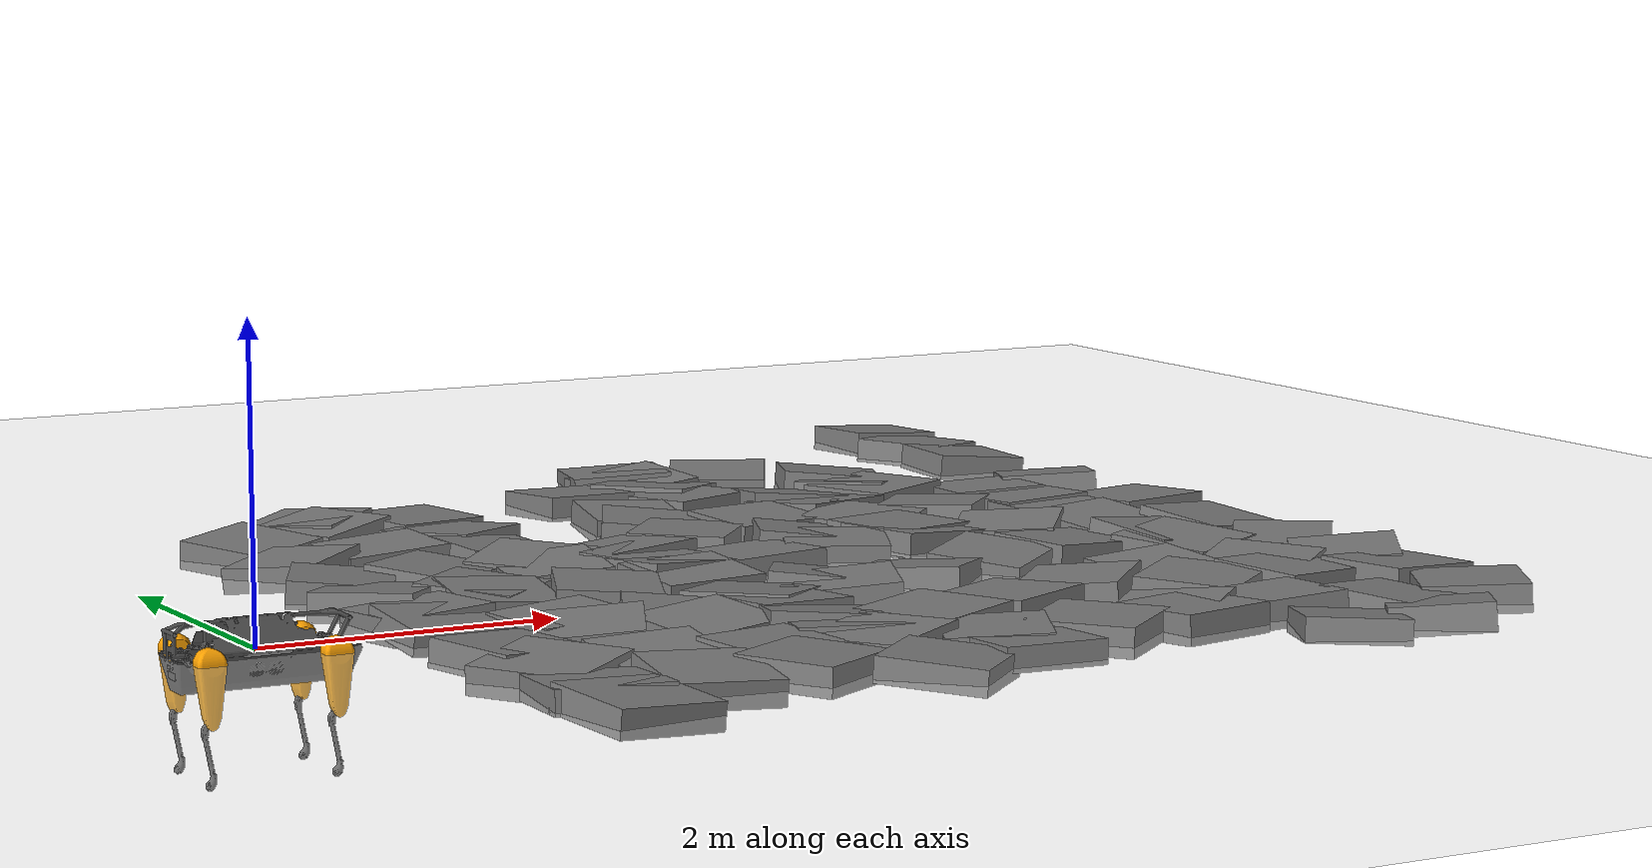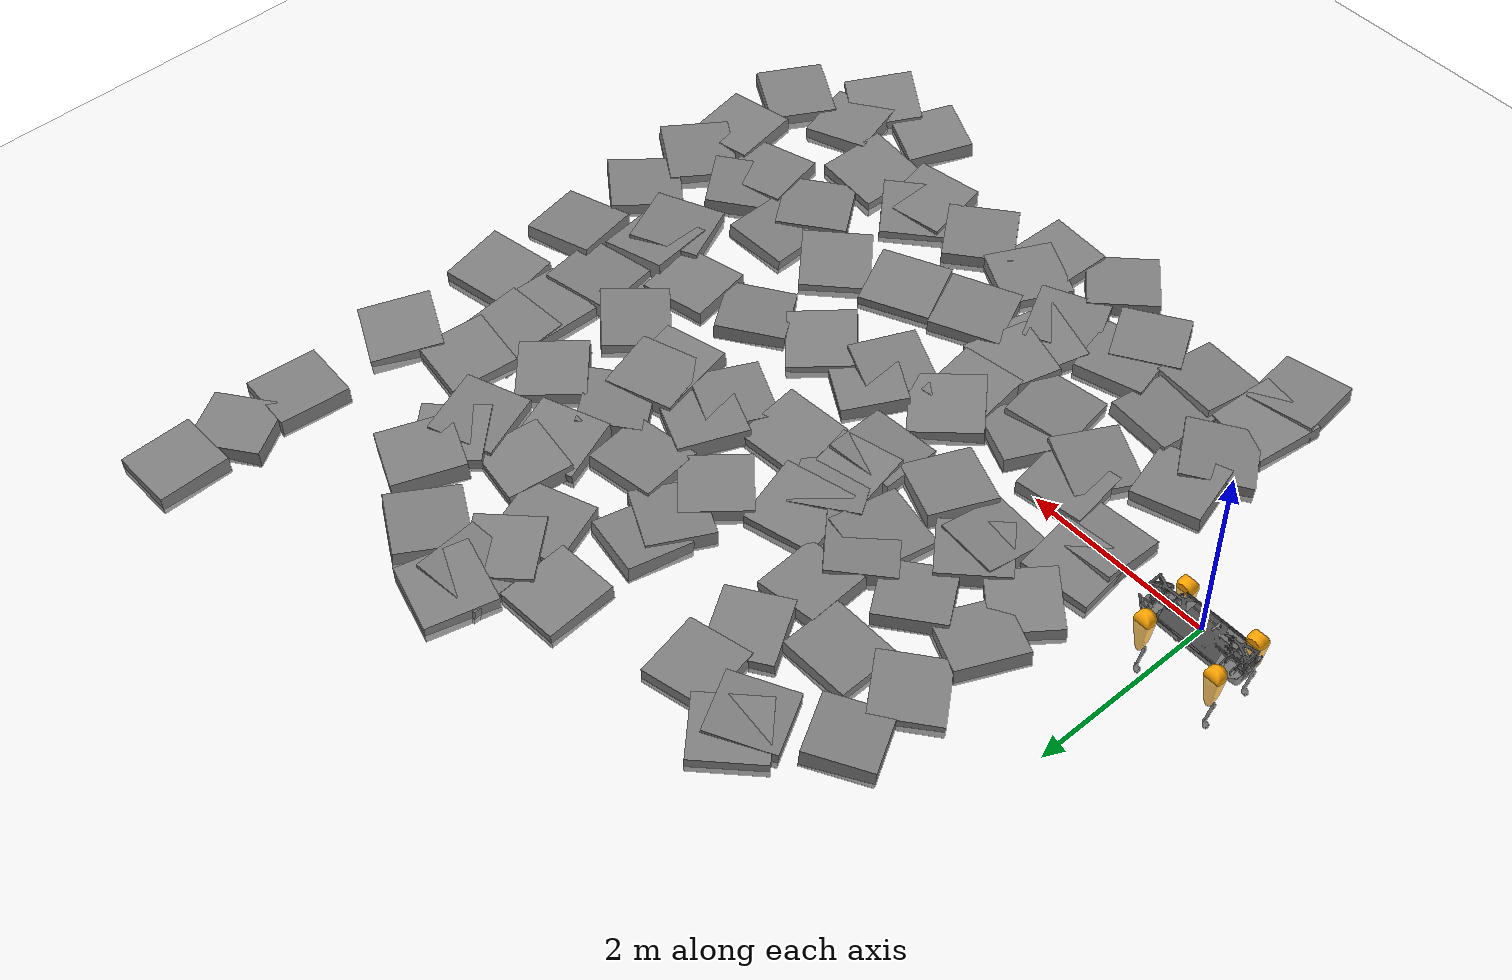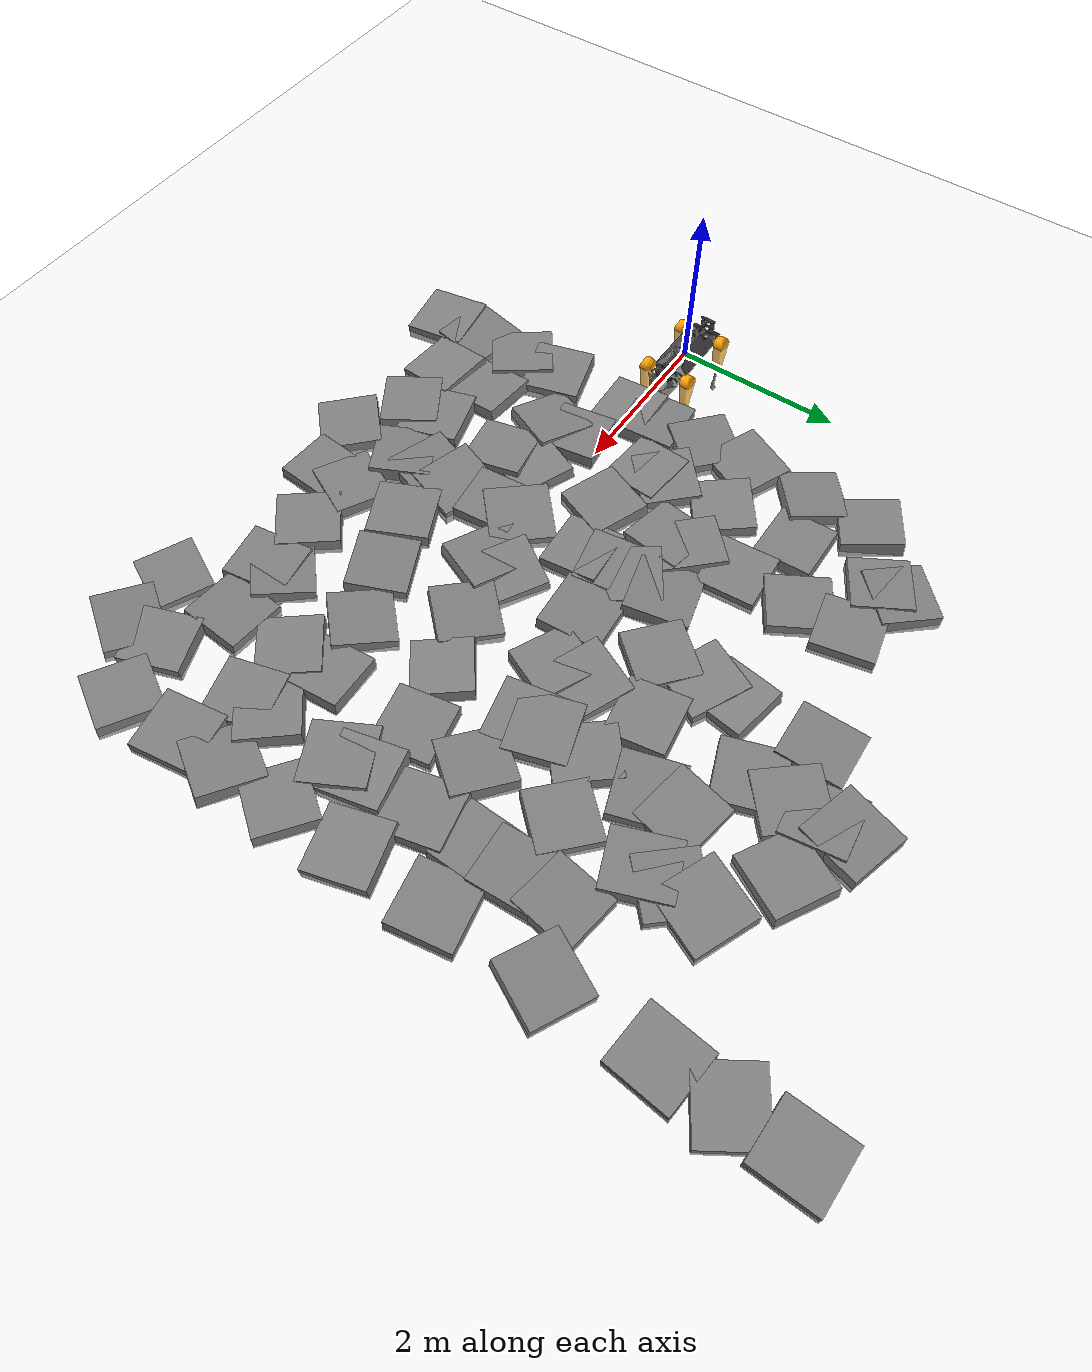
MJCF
<mujoco model="hyqreal2_random_boxes">
      <include file="hyqreal2.xml"/>

      <statistic center="0 0 0.1" extent="0.8"/>

      <visual>
            <headlight diffuse="0.4 0.4 0.4" ambient="0.25 0.25 0.25" specular="0.25 0.25 0.25"/>
            <rgba haze="0.99 0.99 0.99 1"/>
            <global azimuth="-130" elevation="-20"/>
      </visual>
      <asset>
            <texture
                  type="skybox"
                  builtin="gradient"
                  rgb1="0.99 0.99 0.99"
                  rgb2="0.99 0.99 0.99"
                  width="512"
                  height="3072"
            />
            <texture
                  type="2d"
                  name="groundplane"
                  builtin="checker"
                  mark="edge"
                  rgb1="0.93 0.93 0.93"
                  rgb2="0.93 0.93 0.93"
                  markrgb="0 0 0"
                  width="250"
                  height="250"
            />
            <material name="groundplane" texture="groundplane" texuniform="true" texrepeat="5 5" reflectance="0.0"/>
      </asset>

      <worldbody>
            <light pos="0 0 5.0" dir="0 0 -1" directional="true" castshadow="false"/>

            <geom name="floor" size="0 0 0.05" type="plane" material="groundplane"/>

            <geom size="0.354678 0.358708 0.0896548" pos="1.2 -2.71166 0.02" quat="0.0652341 -0.0319302 0.0254488 -0.997034" type="box"/>
            <geom size="0.356488 0.365869 0.0788364" pos="1.2 -2.21978 0.02" quat="0.759952 -0.0193772 0.0245563 0.649226" type="box"/>
            <geom size="0.364622 0.35751 0.0906182" pos="1.2 -1.58577 0.02" quat="0.458906 -0.00516719 -0.0375923 0.887674" type="box"/>
            <geom size="0.354122 0.35046 0.0929774" pos="1.2 -1.06653 0.02" quat="0.990294 0.00586796 0.0316036 0.135219" type="box"/>
            <geom size="0.335666 0.343025 0.0812434" pos="1.2 -0.047247 0.02" quat="0.699206 0.0552936 -0.00835086 0.71273" type="box"/>
            <geom size="0.339463 0.36249 0.0864424" pos="1.2 0.317769 0.02" quat="0.745624 0.00539253 -0.0321707 -0.665567" type="box"/>
            <geom size="0.346239 0.335771 0.0967117" pos="1.2 0.974073 0.02" quat="0.938524 -0.0367319 0.00108768 -0.343253" type="box"/>
            <geom size="0.361414 0.341298 0.0918175" pos="1.2 1.53126 0.02" quat="0.843035 0.0321216 0.024535 0.536338" type="box"/>
            <geom size="0.335286 0.343191 0.0859845" pos="1.2 2.36775 0.02" quat="0.902709 0.00500436 -0.053257 -0.426913" type="box"/>
            <geom size="0.344622 0.334008 0.0979981" pos="1.2 3.08121 0.02" quat="0.867245 0.041568 0.0197942 -0.495747" type="box"/>
            <geom size="0.353424 0.341678 0.0853316" pos="1.9 -2.23449 0.02" quat="0.0506356 0.0172853 -0.0483532 0.997396" type="box"/>
            <geom size="0.34913 0.342748 0.0801555" pos="1.9 -1.59372 0.02" quat="0.998266 0.0473363 -0.017491 -0.0302989" type="box"/>
            <geom size="0.34364 0.350693 0.0913967" pos="1.9 -0.675116 0.02" quat="0.974087 0.0249417 -0.0498964 -0.219185" type="box"/>
            <geom size="0.353011 0.333798 0.0864206" pos="1.9 -0.315923 0.02" quat="0.996769 0.00784916 -0.019476 0.0775293" type="box"/>
            <geom size="0.334267 0.344324 0.0811139" pos="1.9 0.636574 0.02" quat="0.663122 0.00759046 0.0495771 -0.746829" type="box"/>
            <geom size="0.336241 0.358561 0.0890266" pos="1.9 0.885202 0.02" quat="0.40212 0.0362004 -0.00519903 0.914856" type="box"/>
            <geom size="0.341201 0.351484 0.0837107" pos="1.9 1.61867 0.02" quat="0.891391 0.00850887 0.0430055 -0.45111" type="box"/>
            <geom size="0.33302 0.366726 0.091285" pos="1.9 2.52752 0.02" quat="0.716961 0.025214 -0.0159079 -0.696475" type="box"/>
            <geom size="0.337699 0.347496 0.0939288" pos="1.9 3.54656 0.02" quat="0.50233 -0.0146459 -0.0372062 0.863751" type="box"/>
            <geom size="0.335654 0.360502 0.0911121" pos="1.9 3.78412 0.02" quat="0.920172 -0.00357184 -0.0312743 -0.390248" type="box"/>
            <geom size="0.333574 0.348359 0.0950439" pos="2.6 -2.20095 0.02" quat="0.492231 0.0128201 -0.000669289 0.87037" type="box"/>
            <geom size="0.359895 0.362198 0.0919442" pos="2.6 -1.82491 0.02" quat="0.990756 0.0263184 0.0151926 0.13221" type="box"/>
            <geom size="0.348548 0.350459 0.089338" pos="2.6 -0.882231 0.02" quat="0.994556 0.0372519 -0.0291963 0.0928359" type="box"/>
            <geom size="0.348484 0.347091 0.0813035" pos="2.6 -0.476281 0.02" quat="0.213481 0.0361536 -0.0243802 0.975973" type="box"/>
            <geom size="0.352582 0.342784 0.093094" pos="2.6 0.508585 0.02" quat="0.831823 0.0335048 0.00443074 0.554011" type="box"/>
            <geom size="0.34627 0.362757 0.0871507" pos="2.6 1.35291 0.02" quat="0.0845878 -0.0348768 -0.0213519 0.995577" type="box"/>
            <geom size="0.339962 0.36385 0.0998801" pos="2.6 1.60211 0.02" quat="0.370094 0.0271889 0.0305026 -0.928095" type="box"/>
            <geom size="0.338962 0.334916 0.0843823" pos="2.6 2.20558 0.02" quat="0.682859 0.031337 0.0272987 0.729367" type="box"/>
            <geom size="0.333355 0.362489 0.0847502" pos="2.6 2.94372 0.02" quat="0.275021 -0.00811829 -0.0240645 -0.961103" type="box"/>
            <geom size="0.352068 0.336788 0.0870109" pos="2.6 3.54017 0.02" quat="0.77751 -0.00483518 0.00535218 -0.628829" type="box"/>
            <geom size="0.360265 0.34693 0.082794" pos="3.3 -2.57122 0.02" quat="0.929187 0.029074 0.0189687 0.367977" type="box"/>
            <geom size="0.354015 0.345381 0.0963107" pos="3.3 -1.77017 0.02" quat="0.237504 0.0342253 -0.00473834 -0.970772" type="box"/>
            <geom size="0.365348 0.357255 0.0845119" pos="3.3 -1.37691 0.02" quat="0.986766 -0.0379353 0.00187736 -0.157638" type="box"/>
            <geom size="0.334136 0.365843 0.0975329" pos="3.3 -1.03014 0.02" quat="0.812501 -0.000369101 0.0567499 0.580191" type="box"/>
            <geom size="0.336489 0.345521 0.0955185" pos="3.3 -0.492389 0.02" quat="0.998053 -0.0186523 0.0127422 0.0581372" type="box"/>
            <geom size="0.363931 0.365425 0.0871527" pos="3.3 -0.162213 0.02" quat="0.93154 -0.0240255 0.0332841 0.361315" type="box"/>
            <geom size="0.335544 0.359939 0.0854125" pos="3.3 0.683015 0.02" quat="0.731599 0.0319146 0.0219907 -0.680632" type="box"/>
            <geom size="0.334482 0.342912 0.0938826" pos="3.3 1.0608 0.02" quat="0.994675 -0.0337491 0.0272725 0.093481" type="box"/>
            <geom size="0.335392 0.349373 0.0903187" pos="3.3 1.30254 0.02" quat="0.473372 0.0352887 0.00328001 0.88015" type="box"/>
            <geom size="0.366218 0.366639 0.0907957" pos="3.3 1.71047 0.02" quat="0.990801 -0.0411533 -0.0209012 0.127209" type="box"/>
            <geom size="0.337514 0.356996 0.0800177" pos="4 -2.35049 0.02" quat="0.99926 -0.0242953 0.0017573 -0.0297516" type="box"/>
            <geom size="0.35355 0.335905 0.0850661" pos="4 -1.96591 0.02" quat="0.528026 0.0159756 -0.0160628 -0.848926" type="box"/>
            <geom size="0.354043 0.363543 0.0900548" pos="4 -1.23044 0.02" quat="0.843119 0.010908 -0.00635495 -0.537578" type="box"/>
            <geom size="0.344493 0.337035 0.0932492" pos="4 -0.127273 0.02" quat="0.549308 0.0333683 -0.0301667 -0.834409" type="box"/>
            <geom size="0.332842 0.340403 0.0816387" pos="4 0.189606 0.02" quat="0.872441 0.0155629 0.0556251 0.485294" type="box"/>
            <geom size="0.359487 0.358148 0.0806559" pos="4 1.14433 0.02" quat="0.67717 -0.0297407 0.00803749 0.735182" type="box"/>
            <geom size="0.342038 0.352328 0.0891775" pos="4 2.10071 0.02" quat="0.346148 0.00751983 0.00326024 0.938144" type="box"/>
            <geom size="0.333806 0.356259 0.0891892" pos="4 2.62228 0.02" quat="0.524652 -0.0112595 0.0400123 -0.850301" type="box"/>
            <geom size="0.334875 0.333807 0.0909809" pos="4 2.97396 0.02" quat="0.090362 0.0200632 -0.0358422 0.995062" type="box"/>
            <geom size="0.333687 0.366864 0.0866356" pos="4 3.94708 0.02" quat="0.020248 -0.00811981 -0.0327082 -0.999227" type="box"/>
            <geom size="0.355994 0.357222 0.0974128" pos="4.7 -2.01145 0.02" quat="0.943493 0.00397657 -0.00466918 0.331334" type="box"/>
            <geom size="0.363729 0.343319 0.0817165" pos="4.7 -0.9726 0.02" quat="0.216405 0.0080518 -0.0239138 -0.975977" type="box"/>
            <geom size="0.351307 0.341265 0.0800383" pos="4.7 0.137803 0.02" quat="0.926282 -0.0499612 -0.0150184 -0.373202" type="box"/>
            <geom size="0.352663 0.34269 0.0930078" pos="4.7 1.26632 0.02" quat="0.976574 0.0135466 -0.00261269 -0.214737" type="box"/>
            <geom size="0.353988 0.36687 0.0943904" pos="4.7 1.63937 0.02" quat="0.541575 -0.0444384 0.0297327 -0.83895" type="box"/>
            <geom size="0.336508 0.360426 0.0929448" pos="4.7 2.37891 0.02" quat="0.653129 0.0163423 -0.0138705 0.756943" type="box"/>
            <geom size="0.359172 0.361896 0.0810459" pos="4.7 3.54596 0.02" quat="0.57204 -0.0113243 0.00919481 0.820096" type="box"/>
            <geom size="0.360775 0.342092 0.0848551" pos="4.7 3.98983 0.02" quat="0.910203 -0.0353399 0.013891 -0.412417" type="box"/>
            <geom size="0.34632 0.366458 0.0847792" pos="4.7 4.3363 0.02" quat="0.747172 0.0505765 -0.00886806 -0.662644" type="box"/>
            <geom size="0.360122 0.364323 0.097085" pos="4.7 4.62611 0.02" quat="0.606931 -0.00244147 -0.028534 -0.794239" type="box"/>
            <geom size="0.339307 0.354053 0.0991393" pos="5.4 -1.99562 0.02" quat="0.0861855 0.00790942 -0.0184931 -0.996076" type="box"/>
            <geom size="0.342828 0.338917 0.0791816" pos="5.4 -1.78216 0.02" quat="0.913638 0.00354878 -0.0520292 -0.40317" type="box"/>
            <geom size="0.350327 0.349284 0.0793987" pos="5.4 -0.696238 0.02" quat="0.925502 -0.0389156 -0.0339425 0.375207" type="box"/>
            <geom size="0.346925 0.33384 0.0805184" pos="5.4 0.365056 0.02" quat="0.313966 0.0162675 0.0493532 -0.948011" type="box"/>
            <geom size="0.364396 0.346531 0.0850257" pos="5.4 1.40655 0.02" quat="0.634414 0.0127202 0.0339293 0.772143" type="box"/>
            <geom size="0.362053 0.340205 0.0964936" pos="5.4 1.61171 0.02" quat="0.988713 0.00190482 0.0114558 0.149368" type="box"/>
            <geom size="0.333366 0.356651 0.0825036" pos="5.4 2.10753 0.02" quat="0.94012 0.0255222 -0.0136144 0.339614" type="box"/>
            <geom size="0.343799 0.366345 0.0830142" pos="5.4 2.81237 0.02" quat="0.814463 -0.035342 -0.0234585 -0.578663" type="box"/>
            <geom size="0.358491 0.332685 0.0807223" pos="5.4 3.21079 0.02" quat="0.99434 -0.0406809 0.0422377 -0.0885895" type="box"/>
            <geom size="0.365167 0.355411 0.0960704" pos="5.4 4.3156 0.02" quat="0.507703 0.0253923 0.0136717 -0.86105" type="box"/>
            <geom size="0.332648 0.335073 0.0816439" pos="6.1 -2.70408 0.02" quat="0.227359 0.0292626 0.0385252 0.972608" type="box"/>
            <geom size="0.346563 0.358086 0.0929296" pos="6.1 -1.87002 0.02" quat="0.998955 -0.0256111 -0.0265803 -0.0269456" type="box"/>
            <geom size="0.358907 0.347799 0.0875046" pos="6.1 -1.07574 0.02" quat="0.945481 0.0252224 -0.0048367 0.324662" type="box"/>
            <geom size="0.342332 0.358486 0.0852868" pos="6.1 -0.579977 0.02" quat="0.998891 0.0264887 -0.0266282 0.0283753" type="box"/>
            <geom size="0.339346 0.351711 0.0833436" pos="6.1 0.544706 0.02" quat="0.64033 0.0190141 0.0204006 0.767594" type="box"/>
            <geom size="0.357607 0.337918 0.0945795" pos="6.1 1.2923 0.02" quat="0.327698 -0.0414204 -0.018753 0.943688" type="box"/>
            <geom size="0.3403 0.339945 0.0924872" pos="6.1 2.30616 0.02" quat="0.405146 -0.0125868 -0.0201492 -0.913943" type="box"/>
            <geom size="0.341783 0.36692 0.0978317" pos="6.1 3.18711 0.02" quat="0.982501 -0.00200289 -0.0171298 0.185456" type="box"/>
            <geom size="0.339121 0.334077 0.0790374" pos="6.1 3.50458 0.02" quat="0.368136 -0.0305345 -0.0294672 -0.928803" type="box"/>
            <geom size="0.365643 0.366709 0.0985355" pos="6.1 3.85607 0.02" quat="0.204082 0.04858 0.0200244 0.977543" type="box"/>
            <geom size="0.355135 0.333523 0.0952333" pos="6.8 -2.6874 0.02" quat="0.4683 -0.0250365 -0.0572662 -0.881356" type="box"/>
            <geom size="0.333364 0.361002 0.0841948" pos="6.8 -2.22898 0.02" quat="0.161992 -0.0377871 0.0191606 -0.985882" type="box"/>
            <geom size="0.345343 0.344725 0.0860352" pos="6.8 -1.06201 0.02" quat="0.12633 -0.0208251 0.0171577 -0.991621" type="box"/>
            <geom size="0.363884 0.345565 0.0929311" pos="6.8 -0.750571 0.02" quat="0.337723 0.0228113 0.0281954 -0.940547" type="box"/>
            <geom size="0.360906 0.359784 0.0981111" pos="6.8 0.163579 0.02" quat="0.52928 0.0239292 -0.0358347 0.847352" type="box"/>
            <geom size="0.340803 0.3607 0.0988377" pos="6.8 0.440137 0.02" quat="0.992844 0.0431845 0.0542106 0.097251" type="box"/>
            <geom size="0.36404 0.360975 0.0866045" pos="6.8 1.18428 0.02" quat="0.993573 0.0484608 -0.00649486 0.102088" type="box"/>
            <geom size="0.34801 0.3334 0.0868067" pos="6.8 1.82124 0.02" quat="0.99985 -0.00808118 -0.00936224 -0.0121525" type="box"/>
            <geom size="0.341958 0.366414 0.0916521" pos="6.8 2.27429 0.02" quat="0.0336503 0.0156748 -0.019894 -0.999113" type="box"/>
            <geom size="0.34048 0.353592 0.0839161" pos="6.8 2.78706 0.02" quat="0.0676876 -0.0148025 0.024145 0.997305" type="box"/>
            <geom size="0.345322 0.353147 0.0953584" pos="7.5 -2.08615 0.02" quat="0.864319 -0.0154579 -0.00875528 0.50263" type="box"/>
            <geom size="0.348504 0.355258 0.0897459" pos="7.5 -1.30978 0.02" quat="0.996714 -0.00852771 0.0211766 0.0777161" type="box"/>
            <geom size="0.360977 0.352154 0.0919536" pos="7.5 -0.734571 0.02" quat="0.274492 -0.0480006 -0.0152596 0.960269" type="box"/>
            <geom size="0.339904 0.361235 0.0812563" pos="7.5 -0.0101444 0.02" quat="0.95015 0.0254238 -0.0100935 -0.310591" type="box"/>
            <geom size="0.363075 0.355135 0.0859519" pos="7.5 0.854535 0.02" quat="0.125317 -0.0421702 0.0438916 -0.990248" type="box"/>
            <geom size="0.352644 0.364296 0.094377" pos="7.5 1.85761 0.02" quat="0.640287 -0.0170853 0.0118916 0.767853" type="box"/>
            <geom size="0.358622 0.346047 0.0915758" pos="7.5 3.04778 0.02" quat="0.846414 -0.0481847 0.0274869 0.529628" type="box"/>
            <geom size="0.362359 0.344544 0.0931228" pos="7.5 4.24261 0.02" quat="0.740763 0.0281308 0.0334315 0.670345" type="box"/>
            <geom size="0.365172 0.333489 0.0885586" pos="7.5 4.92962 0.02" quat="0.282147 -0.0375309 0.00560447 -0.958621" type="box"/>
            <geom size="0.34329 0.364698 0.0939696" pos="7.5 5.60445 0.02" quat="0.99929 -0.0220652 0.0294936 -0.00789042" type="box"/>
      </worldbody>
</mujoco>

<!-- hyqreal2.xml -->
<mujoco model="hyqreal2_description">
  <compiler angle="radian"/>

  <default>
      <joint damping="0.6" armature="0.01" frictionloss="0.2"/>

      <default class="visual">
          <geom type="mesh" contype="0" conaffinity="0" group="2"/>
      </default>

      <default class="collision">
          <geom group="3" rgba="0.2 0.2 0.2 0.5"/>
      </default>

  </default>

  <asset>
    <mesh name="torso" file="assets/torso.stl" scale="0.001 0.001 0.001"/>
    <mesh name="upper_leg_visual" file="assets/upper_leg_visual.stl" scale="0.001 0.001 0.001"/>
    <mesh name="lower_leg_visual" file="assets/lower_leg_visual.stl" scale="0.001 0.001 0.001"/>
    <mesh name="upper_leg_visual_mirrored" file="assets/upper_leg_visual_mirrored.stl" scale="0.001 0.001 0.001"/>
  </asset>

  <worldbody>
    <body name="base">
      <inertial pos="0.0015 0.0019 -0.0014" quat="-0.0153338 0.706671 -0.0152992 0.70721" mass="83.07" diaginertia="9.46 9.36 2.42"/>
      <joint name="floating_base" type="free" limited="false" actuatorfrclimited="false"/>

      <!-- base visual and collision -->
      <geom class="visual" type="mesh" mesh="torso" pos="0 0 0" quat="0 0 0 1" rgba="0.3 0.3 0.3 1"/>
      <geom class="collision" type="box" size="0.58 0.12 0.21"/>

      <!-- pos="0.4042 0.1505 0" -->
      <body name="FL_hip" pos="0.4042 0.1005 0" quat="0 0.707107 0 -0.707107">
        <inertial pos="-0.0291805 -0.0025707 0.0009034" quat="0.633323 0.721694 0.0652678 0.271663" mass="5.07" diaginertia="0.00531613 0.00492843 0.0047808"/>
        <joint name="FL_hip_joint" pos="0 0 0" axis="0 0 1" range="-0.733038 0.401426" actuatorfrcrange="-150 150"/>

        <!-- FL hip collision -->
        <geom class="collision" type="capsule" size="0.066 0.0409" pos="0 -0.17 0"/>

        <body name="FL_thigh" pos="0 -0.1636 0" quat="0.707107 0.707107 0 0">
          <inertial pos="0.0659 0.0099 -0.0426" quat="0.332192 0.679861 0.348926 0.55289" mass="4.627" diaginertia="0.0841688 0.0797647 0.0139666"/>
          <joint name="FL_thigh_joint" pos="0 0 0" axis="0 0 1" range="0.261799 2.18166" actuatorfrcrange="-250 250"/>

          <!-- FL thigh visual and collision -->
          <geom class="visual" type="mesh" mesh="upper_leg_visual" rgba="1 0.64 0 1"/>
          <geom class="collision" type="box" size="0.165 0.05 0.05" pos="0.23 0 0."/>

          <body name="FL_calf" pos="0.363 0 0">
            <inertial pos="0.273618 -0.00998183 2.57963e-05" quat="0.00662124 0.707 -0.00655672 0.707152" mass="1.2089" diaginertia="0.0483041 0.047405 0.00115536"/>
            <joint name="FL_calf_joint" pos="0 0 0" axis="0 0 1" range="-2.77001 -0.669857" actuatorfrcrange="-350 350"/>

            <!-- FL calf visual and collision -->
            <geom class="visual" type="mesh" mesh="lower_leg_visual" rgba="0.3 0.3 0.3 1"/>
            <geom class="collision" type="box" size="0.15 0.015 0.02" pos="0.2 0.01 0." quat="0.9962 0 0 -0.0872" />

            <!-- FL foot collision -->
            <geom class="collision" type="sphere" name="FL" size="0.032" pos="0.38 0 0" quat="0.5 0.5 -0.5 -0.5"/>
          </body>
        </body>
      </body>

      <body name="FR_hip" pos="0.4042 -0.1005 0" quat="0.707107 0 0.707107 0">
        <inertial pos="-0.0291805 -0.0025707 0.0009034" quat="0.633323 0.721694 0.0652678 0.271663" mass="5.07" diaginertia="0.00531613 0.00492843 0.0047808"/>
        <joint name="FR_hip_joint" pos="0 0 0" axis="0 0 1" range="-0.733038 0.401426" actuatorfrcrange="-150 150"/>

        <!-- FR hip collision -->
        <geom class="collision" type="capsule" size="0.066 0.0409" pos="0 -0.17 0"/>

        <body name="FR_thigh" pos="0 -0.1636 0" quat="0.707107 -0.707107 0 0">
          <inertial pos="0.0659 0.0099 0.0426" quat="0.679861 0.332192 0.55289 0.348926" mass="4.627" diaginertia="0.0841688 0.0797647 0.0139666"/>
          <joint name="FR_thigh_joint" pos="0 0 0" axis="0 0 1" range="0.261799 2.18166" actuatorfrcrange="-250 250"/>

          <!-- FR thigh visual and collision -->
          <geom class="visual" type="mesh" mesh="upper_leg_visual_mirrored" rgba="1 0.64 0 1"/>
          <geom class="collision" type="box" size="0.165 0.05 0.05" pos="0.23 0 0."/>

          <body name="FR_calf" pos="0.363 0 0">
            <inertial pos="0.273618 -0.00998183 2.57963e-05" quat="0.00662124 0.707 -0.00655672 0.707152" mass="1.2089" diaginertia="0.0483041 0.047405 0.00115536"/>
            <joint name="FR_calf_joint" pos="0 0 0" axis="0 0 1" range="-2.77001 -0.669857" actuatorfrcrange="-350 350"/>

            <!-- FR calf visual and collision -->
            <geom class="visual" type="mesh" mesh="lower_leg_visual" rgba="0.3 0.3 0.3 1"/>
            <geom class="collision" type="box" size="0.15 0.015 0.02" pos="0.2 0.01 0." quat="0.9962 0 0 -0.0872" />

            <!-- FR foot collision -->
            <geom class="collision" type="sphere" name="FR" size="0.032" pos="0.38 0 0" quat="0.5 0.5 -0.5 -0.5"/>
          </body>
        </body>
      </body>

      <body name="RL_hip" pos="-0.4042 0.1005 0" quat="0 0.707107 0 -0.707107">
        <inertial pos="-0.0291805 -0.0025707 0.0009034" quat="0.633323 0.721694 0.0652678 0.271663" mass="5.07" diaginertia="0.00531613 0.00492843 0.0047808"/>
        <joint name="RL_hip_joint" pos="0 0 0" axis="0 0 1" range="-0.733038 0.401426" actuatorfrcrange="-150 150"/>

        <!-- RL hip collision -->
        <geom class="collision" type="capsule" size="0.066 0.0409" pos="0 -0.17 0"/>

        <body name="RL_thigh" pos="0 -0.1636 0" quat="0.707107 0.707107 0 0">
          <inertial pos="0.0659 0.0099 -0.0426" quat="0.332192 0.679861 0.348926 0.55289" mass="4.627" diaginertia="0.0841688 0.0797647 0.0139666"/>
          <joint name="RL_thigh_joint" pos="0 0 0" axis="0 0 1" range="0.261799 2.18166" actuatorfrcrange="-250 250"/>

          <!-- RL thigh collision -->
          <geom class="visual" type="mesh" mesh="upper_leg_visual" rgba="1 0.64 0 1"/>
          <geom class="collision" type="box" size="0.165 0.05 0.05" pos="0.23 0 0."/>

          <body name="RL_calf" pos="0.363 0 0">
            <inertial pos="0.273618 -0.00998183 2.57963e-05" quat="0.00662124 0.707 -0.00655672 0.707152" mass="1.2089" diaginertia="0.0483041 0.047405 0.00115536"/>
            <joint name="RL_calf_joint" pos="0 0 0" axis="0 0 1" range="-2.77001 -0.669857" actuatorfrcrange="-350 350"/>

            <!-- RL calf visual and collision -->
            <geom class="visual" type="mesh" mesh="lower_leg_visual" rgba="0.3 0.3 0.3 1"/>
            <geom class="collision" type="box" size="0.15 0.015 0.02" pos="0.2 0.01 0." quat="0.9962 0 0 -0.0872" />

            <!-- RL foot collision -->
            <geom class="collision" type="sphere" name="RL" size="0.032" pos="0.38 0 0" quat="0.5 0.5 -0.5 -0.5"/>
          </body>
        </body>
      </body>

      <body name="RR_hip" pos="-0.4042 -0.1005 0" quat="0.707107 0 0.707107 0">
        <inertial pos="-0.0291805 -0.0025707 0.0009034" quat="0.633323 0.721694 0.0652678 0.271663" mass="5.07" diaginertia="0.00531613 0.00492843 0.0047808"/>
        <joint name="RR_hip_joint" pos="0 0 0" axis="0 0 1" range="-0.733038 0.401426" actuatorfrcrange="-150 150"/>

        <!-- RR hip collision -->
        <geom class="collision" type="capsule" size="0.066 0.0409" pos="0 -0.17 0"/>

        <body name="RR_thigh" pos="0 -0.1636 0" quat="0.707107 -0.707107 0 0">
          <inertial pos="0.0659 0.0099 0.0426" quat="0.679861 0.332192 0.55289 0.348926" mass="4.627" diaginertia="0.0841688 0.0797647 0.0139666"/>
          <joint name="RR_thigh_joint" pos="0 0 0" axis="0 0 1" range="0.261799 2.18166" actuatorfrcrange="-250 250"/>

          <!-- RR thigh collision -->
          <geom class="visual" type="mesh" mesh="upper_leg_visual_mirrored" rgba="1 0.64 0 1"/>
          <geom class="collision" type="box" size="0.165 0.05 0.05" pos="0.23 0 0."/>

          <body name="RR_calf" pos="0.363 0 0">
            <inertial pos="0.273618 -0.00998183 2.57963e-05" quat="0.00662124 0.707 -0.00655672 0.707152" mass="1.2089" diaginertia="0.0483041 0.047405 0.00115536"/>
            <joint name="RR_calf_joint" pos="0 0 0" axis="0 0 1" range="-2.77001 -0.669857" actuatorfrcrange="-350 350"/>

            <!-- RR calf visual and collision -->
            <geom class="visual" type="mesh" mesh="lower_leg_visual" rgba="0.3 0.3 0.3 1"/>
            <geom class="collision" type="box" size="0.15 0.015 0.02" pos="0.2 0.01 0." quat="0.9962 0 0 -0.0872" />

            <!-- RR foot collision -->
            <geom class="collision" type="sphere" name="RR" size="0.032" pos="0.38 0 0" quat="0.5 0.5 -0.5 -0.5"/>
          </body>
        </body>
      </body>
    </body>
  </worldbody>

  <actuator>
        <motor name="FL_hip" ctrlrange="-173.0 173.0" joint="FL_hip_joint"/>
        <motor name="FL_thigh" ctrlrange="-208 208" joint="FL_thigh_joint"/>
        <motor name="FL_calf" ctrlrange="-249 249" joint="FL_calf_joint"/>

        <motor name="FR_hip" ctrlrange="-173.0 173.0" joint="FR_hip_joint"/>
        <motor name="FR_thigh" ctrlrange="-208 208" joint="FR_thigh_joint"/>
        <motor name="FR_calf" ctrlrange="-249 249" joint="FR_calf_joint"/>

        <motor name="RL_hip" ctrlrange="-173.0 173.0" joint="RL_hip_joint"/>
        <motor name="RL_thigh" ctrlrange="-208 208" joint="RL_thigh_joint"/>
        <motor name="RL_calf" ctrlrange="-249 249" joint="RL_calf_joint"/>

        <motor name="RR_hip" ctrlrange="-173.0 173.0" joint="RR_hip_joint"/>
        <motor name="RR_thigh" ctrlrange="-208 208" joint="RR_thigh_joint"/>
        <motor name="RR_calf" ctrlrange="-249 249" joint="RR_calf_joint"/>
  </actuator>

  <keyframe>
        <key name="home" qpos="0 0 0.5 1 0 0 0 0 0.9 -1.8 0 0.9 -1.8 0 0.9 -1.8 0 0.9 -1.8"/>
        <key name="down" qpos="0 0 0.05 1 0 0 0 0.0 1.21 -2.794 0.0 1.21 -2.794 0.0 1.21 -2.794 0.0 1.21 -2.794"/>
  </keyframe>
</mujoco>
